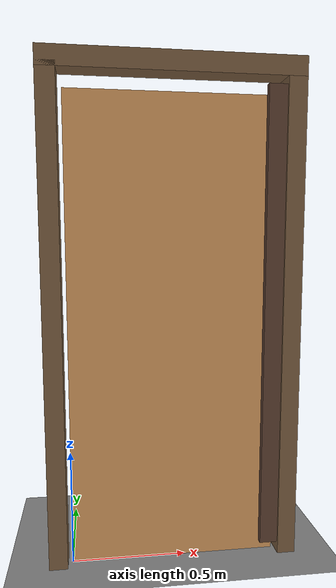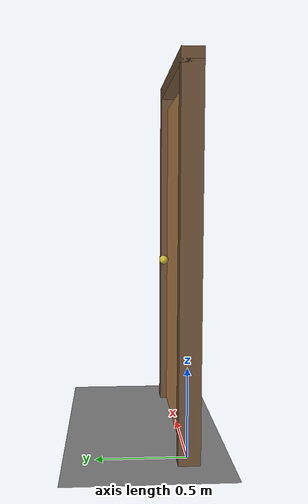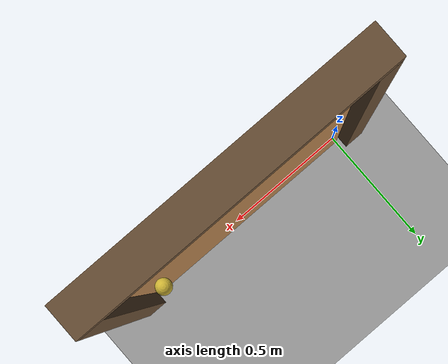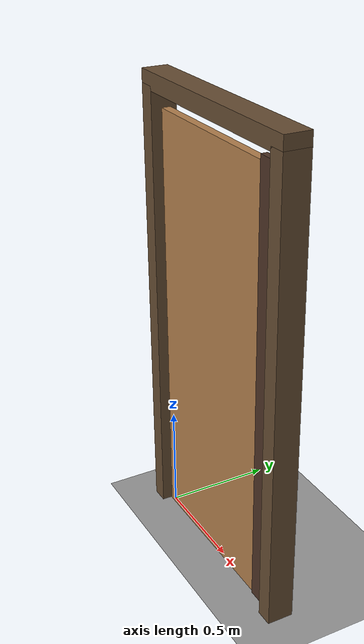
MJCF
<mujoco model="self_closing_door">
  <compiler angle="radian"/>
  <option timestep="0.002" gravity="0 0 -9.81"/>

  <worldbody>
    <light name="sun" pos="1 -2 4" dir="-0.2 0.4 -1" directional="true"/>
    <geom name="floor" type="plane" size="5 5 0.1" rgba="0.6 0.6 0.6 1"/>

    <!-- door frame: visual only, the door stop is the hinge joint limit at 0 -->
    <geom name="hinge_post" type="box" pos="-0.06 0 1.05" size="0.04 0.06 1.05" contype="0" conaffinity="0" rgba="0.4 0.3 0.2 1"/>
    <geom name="latch_post" type="box" pos="0.96 0 1.05" size="0.04 0.06 1.05" contype="0" conaffinity="0" rgba="0.4 0.3 0.2 1"/>
    <geom name="lintel" type="box" pos="0.45 0 2.12" size="0.55 0.06 0.04" contype="0" conaffinity="0" rgba="0.4 0.3 0.2 1"/>
    <geom name="stop_strip" type="box" pos="0.88 -0.035 1.05" size="0.04 0.015 1.0" contype="0" conaffinity="0" rgba="0.3 0.2 0.15 1"/>

    <body name="door" pos="0 0 0">
      <joint name="hinge" type="hinge" pos="0 0 0" axis="0 0 1" limited="true" range="0 1.7" stiffness="20" springref="-0.3" damping="15" armature="0.05" solreflimit="0.01 1" solimplimit="0.95 0.99 0.001"/>
      <geom name="door_panel" type="box" pos="0.45 0 1.01" size="0.45 0.02 1.0" density="600" rgba="0.7 0.5 0.3 1"/>
      <geom name="door_knob" type="sphere" pos="0.82 0.05 1.0" size="0.03" density="600" contype="0" conaffinity="0" rgba="0.8 0.7 0.2 1"/>
    </body>
  </worldbody>

  <keyframe>
    <key name="start" qpos="1.5" qvel="0"/>
  </keyframe>
</mujoco>
